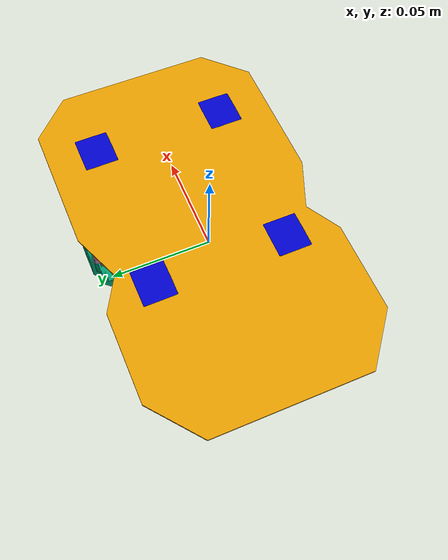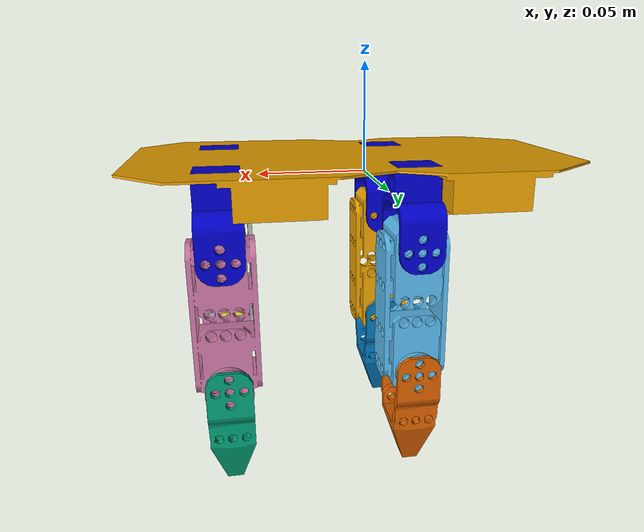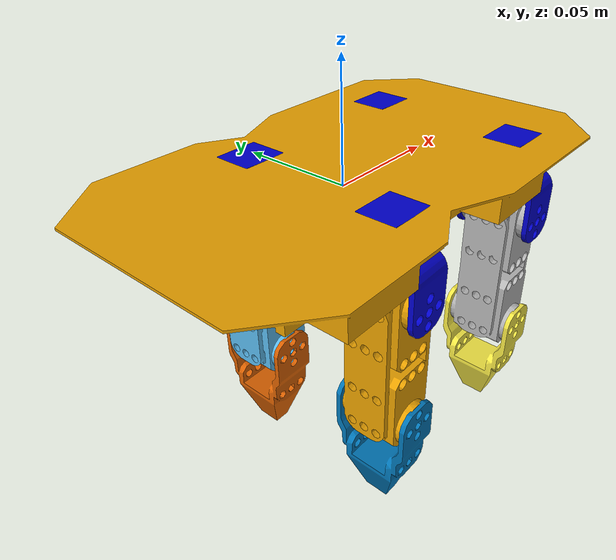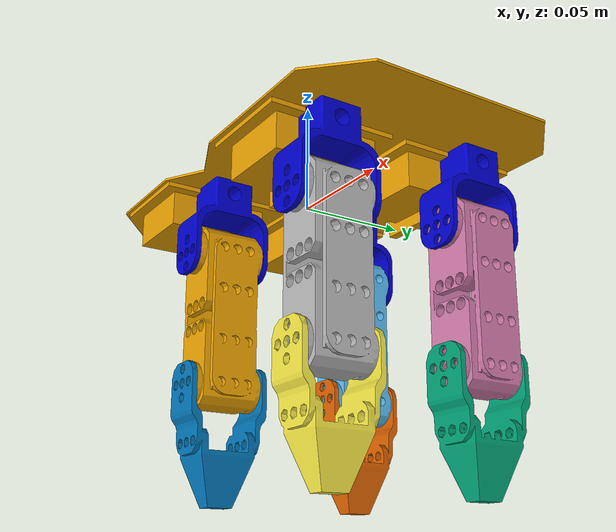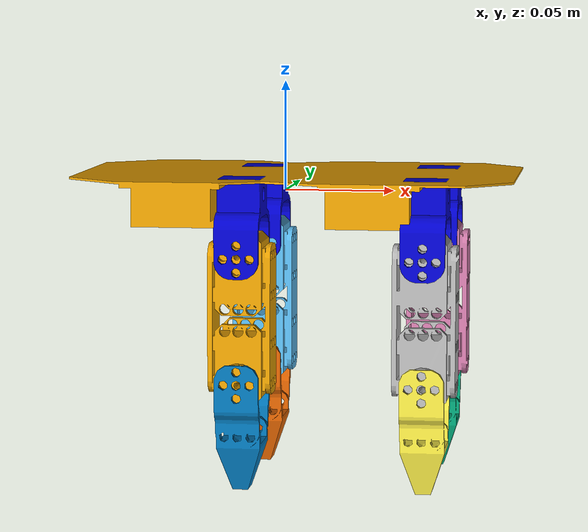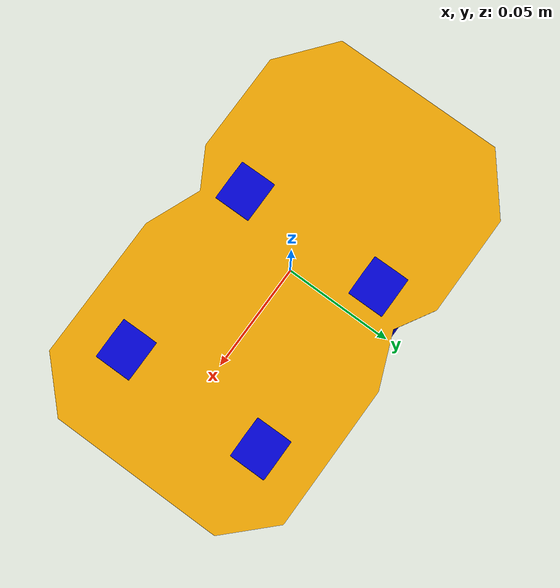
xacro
<?xml version='1.0'?>
  <robot xmlns:xacro="http://www.ros.org/wiki/xacro" name="ker">

    <xacro:property name="bodywidth" value=".12000000" />
    <xacro:property name="bodylen" value=".200000000" />
    <xacro:property name="bodyheight" value=".0310000000" />

    <xacro:property name="motorwidth" value=".0344" />
    <xacro:property name="motorlen" value=".022" />
    <xacro:property name="motorheight" value=".0472" />

    <xacro:property name="bigmotorwidth" value=".025" />
    <xacro:property name="bigmotorlen" value=".051" />
    <xacro:property name="bigmotorheight" value=".053" />

    <xacro:property name="humeruswidth" value=" 0.025" />
    <xacro:property name="humeruslen" value="0.022" />
    <xacro:property name="humerusheight" value=" 0.076" />

    <xacro:property name="femurwidth" value=" 0.025" />
    <xacro:property name="femurlen" value="0.022" />
    <xacro:property name="femurheight" value="0.076" />

    <xacro:property name="radiuswidth" value="0.025" />
    <xacro:property name="radiuslen" value="0.022" />
    <xacro:property name="radiusheight" value="0.04958" />

    <xacro:property name="tibulawidth" value="0.025" />
    <xacro:property name="tibulalen" value="0.022" />
    <xacro:property name="tibulaheight" value="0.04958" />

    <!--TRANSMISSION-->
    <xacro:macro name="ker_transmission" params="joint_name">
      <transmission name="${joint_name}_transmission">
        <type>transmission_interface/SimpleTransmission</type>
          <joint name="${joint_name}">
            <hardwareInterface>PositionJointInterface</hardwareInterface>
          </joint>
          <actuator name="${joint_name}_motor">
            <mechanicalReduction>1</mechanicalReduction>
          </actuator>
      </transmission>
	</xacro:macro>

    <!--BODY INERTIAL PARAMETERS-->
    <xacro:macro name="body_inertial">
        <inertial>
                <origin rpy="0 0 0" xyz="0 0 0"/>
                <mass value="0.1045248" />
                <inertia ixx="${0.00000007935*1000}" ixy="${-0.00000000038*1000}" ixz="${0.00000000127*1000}"
                     iyy="${0.00000016719*1000}" iyz="${0.00000000003*1000}"
                     izz="${0.00000023972*1000}" />
        </inertial>
    </xacro:macro>

    <!--SHOULDER INERTIAL PARAMETERS-->
    <xacro:macro name="shoulder_inertial">
        <inertial>
                <mass value="0.0082825" />
                <inertia ixx="${1000*0.00000000163}" ixy="0.0" ixz="0.0"
                     iyy="${1000*0.00000000114}" iyz="0.0"
                     izz="${1000*0.00000000103}" />
        </inertial>
    </xacro:macro>

    <!--CORONA INERTIAL PARAMETERS-->
    <xacro:macro name="corona_inertial">
        <inertial>
                <origin rpy="0 0 0" xyz="0 0 0"/>
                <mass value="${2*0.0167}" />
                <inertia ixx="${2*0.0167*0.08333333*bigmotorwidth^2 + 2*0.0167*0.08333333*bigmotorheight^2}" ixy="0.0" ixz="0.0"
                     iyy="${2*0.0167*0.08333333*bigmotorlen^2 + 2*0.0167*0.08333333*bigmotorheight^2}" iyz="0.0"
                     izz="${2*0.0167*0.08333333*bigmotorlen^2 + 2*0.0167*0.08333333*bigmotorwidth^2}" />
        </inertial>
    </xacro:macro>

    <!--HUMERUS AND FEMUR INERTIAL PARAMETERS-->
    <xacro:macro name="humerus_femur_inertial" params="mass">
        <inertial>
                <origin rpy="0 0 0" xyz="0 0 ${-humerusheight/2}"/>
                <mass value="0.03619760" />
                <inertia ixx="${1000*0.00000002198}" ixy="0.0" ixz="${1000*0.00000000004}"
                     iyy="${1000*0.00000002188}" iyz="0.0"
                     izz="${1000*0.00000000391}" />
        </inertial>
    </xacro:macro>

    <!--RADIUS AND TIBULA INERTIAL PARAMETERS-->
    <xacro:macro name="radius_tibula_inertial" params="mass">
        <inertial>
                <origin rpy="0 0 0" xyz="0 0 ${-humerusheight/2-radiusheight/2 + 0.037}"/>
                <mass value="0.00992447" />
                <inertia ixx="${0.00000000269*1000}" ixy="0.0" ixz="0.0"
                     iyy="${0.00000000199*1000}" iyz="0.0"
                     izz="${0.00000000122*1000}" />
        </inertial>
    </xacro:macro>

    <!--JOINT OPTION PRESETS-->
    <xacro:macro name="fixed" params="name pname origin">
        <joint name="${name}_joint" type="fixed">
            <parent link="${pname}"/>
            <child link="${name}"/>
            <origin xyz="${origin}" rpy="0 0 0"/>
        </joint>
    </xacro:macro>

    <xacro:macro name="revolute" params="name pname origin axis">
        <joint name="${name}_joint" type="revolute">
            <parent link="${pname}"/>
            <child link="${name}"/>
            <origin xyz="${origin}" rpy="0 0 0"/>
            <axis xyz="${axis}"/>
            <dynamics damping="0.0"/>
            <limit effort="1.5" velocity="0.5" lower="-3.14" upper="3.14"/>
        </joint>
    </xacro:macro>

    <!--SHOULDER-->
    <xacro:macro name="motor" params="name *type">
    <link name="${name}">
        <xacro:shoulder_inertial/>
        <visual>
            <geometry>
              <!--box size="${motorlen} ${motorwidth} ${motorheight}"/-->
              <mesh filename="package://ker_description/meshes/roll.STL" scale="1 1 1"/>
            </geometry>
            <origin xyz="0 0 ${-bigmotorwidth/2}" rpy="0 0 0"/>
            <material name="blue">
                <color rgba="0 0 .8 1"/>
            </material>
        </visual>
        <collision>
            <geometry>
              <!--box size="${motorlen} ${motorwidth} ${motorheight}"/-->
              <mesh filename="package://ker_description/meshes/roll.STL" scale="1 1 1"/>
            </geometry>
            <origin xyz="0 0 ${-bigmotorwidth/2}" rpy="0 0 0"/>
        </collision>
    </link>
    <xacro:insert_block name="type" />
    </xacro:macro>

    <!--HUMERUS-->
    <xacro:macro name="humerus" params="name *type">
    <link name="${name}">
        <xacro:humerus_femur_inertial mass="1"/>
        <collision>
          <origin xyz="0 0 ${-humerusheight/2 + 0.01}" rpy="0 0 0"/>
          <geometry>
            <!--box size="${humeruslen} ${humeruswidth} ${humerusheight}"/-->
            <mesh filename="package://ker_description/meshes/humerus.stl" scale="1 1 1"/>
          </geometry>
        </collision>
        <visual>
          <origin xyz="0 0 ${-humerusheight/2 + 0.01}" rpy="0 0 0"/>
          <geometry>
            <!--box size = "${humeruslen} ${humeruswidth} ${humerusheight}"/-->
            <mesh filename="package://ker_description/meshes/humerus.stl" scale="1 1 1"/>
          </geometry>
        </visual>
    </link>
    <xacro:insert_block name="type" />
    <xacro:ker_transmission joint_name="${name}_joint" />
    </xacro:macro>

    <!--FEMUR-->
    <xacro:macro name="femur" params="name *type">
    <link name="${name}">
        <xacro:humerus_femur_inertial mass="1"/>
        <collision>
          <origin xyz="0 0 ${-femurheight/2 + 0.01}" rpy="0 0 0"/>
          <geometry>
            <!--box size="${femurlen} ${femurwidth} ${femurheight}"/-->
            <mesh filename="package://ker_description/meshes/humerus.stl" scale="1 1 1"/>
          </geometry>
        </collision>
        <visual>
          <origin xyz="0 0 ${-femurheight/2 + 0.01}" rpy="0 0 0"/>
          <geometry>
            <mesh filename="package://ker_description/meshes/humerus.stl" scale="1 1 1"/>
            <!--box size = "${femurlen} ${femurwidth} ${femurheight}"/-->
          </geometry>
        </visual>
    </link>
    <xacro:insert_block name="type" />
    <xacro:ker_transmission joint_name="${name}_joint" />
    </xacro:macro>

    <!--RADIUS-->
    <xacro:macro name="radius" params="name *type">
    <link name="${name}">
        <xacro:radius_tibula_inertial mass="1"/>
        <collision>
          <origin xyz="0 0 ${-radiusheight + 0.008}" rpy="0 0 0"/>
          <geometry>
            <!--box size="${radiuslen} ${radiuswidth} ${radiusheight}"/-->
            <!--mesh filename="package://ker_description/meshes/radius.stl" scale="1 1 1"/-->
            <sphere radius="0.01"/>
          </geometry>
        </collision>
        <visual>
          <origin xyz="0 0 ${-radiusheight/2+0.01}" rpy="0 0 0"/>
          <geometry>
            <mesh filename="package://ker_description/meshes/radius.stl" scale="1 1 1"/>
            <!--box size = "${radiuslen} ${radiuswidth} ${radiusheight}"/-->
          </geometry>
        </visual>
    </link>
    <gazebo reference="${name}">
        <kp>1000000.0</kp>
        <kd>100.0</kd>
        <mu1>1000.0</mu1>
        <mu2>1000.0</mu2>
        <fdir1>1 1 0</fdir1>
        <maxVel>1.0</maxVel>
        <minDepth>0.0</minDepth>
    </gazebo>
    <xacro:insert_block name="type" />
    <xacro:ker_transmission joint_name="${name}_joint" />
    </xacro:macro>

    <!--TIBULA-->
    <xacro:macro name="tibula" params="name *type">
    <link name="${name}">
        <xacro:radius_tibula_inertial mass="1"/>
        <collision>
          <origin xyz="0 0 ${-tibulaheight +0.008}" rpy="0 0 0"/>
          <geometry>
            <!--box size="${tibulalen} ${tibulawidth} ${tibulaheight}"/-->
            <sphere radius="0.01"/>
            <!--mesh filename="package://ker_description/meshes/radius.stl" scale="1 1 1"/-->
          </geometry>
        </collision>
        <visual>
          <origin xyz="0 0 ${-tibulaheight/2 + 0.01}" rpy="0 0 0"/>
          <geometry>
            <!--box size = "${tibulalen} ${tibulawidth} ${tibulaheight}"/-->
            <mesh filename="package://ker_description/meshes/radius.stl" scale="1 1 1"/>
          </geometry>
        </visual>
    </link>
    <gazebo reference="${name}">
        <kp>1000000.0</kp>
        <kd>100.0</kd>
        <mu1>1000.0</mu1>
        <mu2>1000.0</mu2>
        <fdir1>1 1 0</fdir1>
        <maxVel>1.0</maxVel>
        <minDepth>0.0</minDepth>
    </gazebo>
    <xacro:insert_block name="type" />
    <xacro:ker_transmission joint_name="${name}_joint" />
    </xacro:macro>

    <!--BODY-->
    <link name="body">
        <xacro:body_inertial/>

        <collision>
          <origin xyz="0 0 0.0" rpy="0 0 0"/>
          <geometry>
            <!--box size = "${bodylen} ${bodywidth} ${bodyheight}"/-->
            <mesh filename="package://ker_description/meshes/platforma.stl" scale="1 1 1"/>
          </geometry>
        </collision>

        <visual>
          <origin xyz="0 0 0.0" rpy="0 0 0"/>
          <geometry>
            <mesh filename="package://ker_description/meshes/platforma.stl" scale="1 1 1"/>
          </geometry>
        </visual>
    </link>
    <!--DUMMY-->
    <link name="root">
        <collision>
          <origin xyz="0 0 0" rpy="0 0 0"/>
          <geometry>
            <box size = "0 0 0"/>
          </geometry>
        </collision>

        <visual>
          <origin xyz="0 0 0.0" rpy="0 0 0"/>
          <geometry>
            <box size = "0 0 0"/>
          </geometry>
        </visual>
    </link>

    <xacro:fixed name="body" pname="root" origin="0 0 0"/>

    <xacro:motor name="motor_1">
        <xacro:revolute name="motor_1" pname="body" origin="${bodylen/2-motorlen-0.01} ${bodywidth/2-bigmotorlen/2} ${-bigmotorwidth +bodyheight/2 + 0.01}" axis="1 0 0"/>
    </xacro:motor>
    <xacro:ker_transmission joint_name="motor_1_joint" />
    <xacro:motor name="motor_2">
        <xacro:revolute name="motor_2" pname="body" origin="${bodylen/2-motorlen-0.01} ${-bodywidth/2+bigmotorlen/2} ${-bigmotorwidth +bodyheight/2 + 0.01}" axis="1 0 0"/>
    </xacro:motor>
    <xacro:ker_transmission joint_name="motor_2_joint" />
    <xacro:motor name="motor_3">
        <xacro:revolute name="motor_3" pname="body" origin="${-bodylen/2+bigmotorheight+motorlen+0.01} ${-bodywidth/2+bigmotorlen/2} ${-bigmotorwidth +bodyheight/2 + 0.01}" axis="1 0 0"/>
    </xacro:motor>
    <xacro:ker_transmission joint_name="motor_3_joint" />
    <xacro:motor name="motor_4">
        <xacro:revolute name="motor_4" pname="body" origin="${-bodylen/2+bigmotorheight+motorlen+0.01} ${bodywidth/2-bigmotorlen/2} ${-bigmotorwidth +bodyheight/2 + 0.01}" axis="1 0 0"/>
    </xacro:motor>
    <xacro:ker_transmission joint_name="motor_4_joint" />

    <xacro:humerus name="humerus_1">
        <xacro:revolute name="humerus_1" pname="motor_1" origin="0 0 ${-motorheight + 0.02}" axis="0 1 0"/> <!--1 za krug oko osi, 1 za sniženu os ramena/-->
    </xacro:humerus>
    <xacro:humerus name="humerus_2">
        <xacro:revolute name="humerus_2" pname="motor_2" origin="0 0 ${-motorheight + 0.02}" axis="0 -1 0"/>
    </xacro:humerus>
    <xacro:femur name="femur_2">
        <xacro:revolute name="femur_2" pname="motor_3" origin="0 0 ${-motorheight + 0.02}" axis="0 -1 0"/>
    </xacro:femur>
    <xacro:femur name="femur_1">
        <xacro:revolute name="femur_1" pname="motor_4" origin="0 0 ${-motorheight + 0.02}" axis="0 1 0"/>
    </xacro:femur>

    <xacro:radius name="radius_1" >
        <xacro:revolute name="radius_1" pname="humerus_1" origin="0 0 ${-humerusheight + 0.02}" axis="0 1 0"/>
    </xacro:radius>
    <xacro:radius name="radius_2" >
        <xacro:revolute name="radius_2" pname="humerus_2" origin="0 0 ${-humerusheight + 0.02}" axis="0 -1 0"/>
    </xacro:radius>
    <xacro:tibula name="tibula_2" >
        <xacro:revolute name="tibula_2" pname="femur_2" origin="0 0 ${-femurheight + 0.02}" axis="0 -1 0"/>
    </xacro:tibula>
    <xacro:tibula name="tibula_1" >
        <xacro:revolute name="tibula_1" pname="femur_1" origin="0 0 ${-femurheight + 0.02}" axis="0 1 0"/>
    </xacro:tibula>

    <gazebo>
        <plugin filename="libgazebo_ros_control.so" name="gazebo_ros_control">
                <robotParam>robot_description</robotParam>
        </plugin>
    </gazebo>
  </robot>
